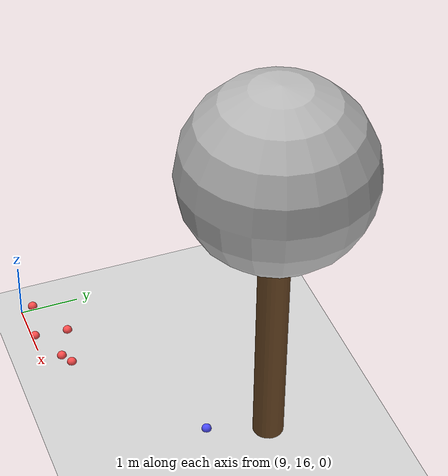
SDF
<sdf version="1.7">
 <world name="default">
  <model name="ground_plane">
   <static>1</static>
   <link name="link">
    <collision name="collision">
     <geometry><plane><normal>0 0 1</normal><size>100 100</size></plane></geometry>
     <surface>
      <contact><collide_bitmask>65535</collide_bitmask></contact>
      <friction><ode><mu>100</mu><mu2>50</mu2></ode></friction>
     </surface>
    </collision>
    <visual name="visual">
     <cast_shadows>0</cast_shadows>
     <geometry><plane><normal>0 0 1</normal><size>100 100</size></plane></geometry>
     <material>
      <script><uri>file://media/materials/scripts/gazebo.material</uri><name>Gazebo/Grey</name></script>
     </material>
    </visual>
   </link>
  </model>
  <model name="tree_simple_52">
   <static>1</static>
   <link name="link">
    <pose>0 0 0.1 0 -0 0</pose>
    <inertial>
     <mass>666</mass>
     <inertia>
      <ixx>0.0861167</ixx>
      <ixy>0</ixy>
      <ixz>0</ixz>
      <iyy>0.0861167</iyy>
      <iyz>0</iyz>
      <izz>0.0861167</izz>
     </inertia>
    </inertial>
    <collision name="collision_trunk">
     <pose>0 0 2 0 -0 0</pose>
     <geometry><cylinder><radius>0.25</radius><length>4</length></cylinder></geometry>
     <surface>
      <contact>
       <poissons_ratio>0.347</poissons_ratio>
       <elastic_modulus>8.8e+09</elastic_modulus>
       <ode><kp>100000</kp><kd>100</kd><max_vel>100</max_vel><min_depth>0.001</min_depth></ode>
      </contact>
      <friction>
       <torsional>
        <coefficient>1</coefficient>
        <use_patch_radius>0</use_patch_radius>
        <surface_radius>0.01</surface_radius>
       </torsional>
      </friction>
     </surface>
    </collision>
    <collision name="collision_treetop">
     <pose>0 0 5.2 0 -0 0</pose>
     <geometry><sphere><radius>1.5</radius></sphere></geometry>
     <surface>
      <contact>
       <poissons_ratio>0.347</poissons_ratio>
       <elastic_modulus>8.8e+09</elastic_modulus>
       <ode><kp>100000</kp><kd>100</kd><max_vel>100</max_vel><min_depth>0.001</min_depth></ode>
      </contact>
      <friction>
       <torsional>
        <coefficient>1</coefficient>
        <use_patch_radius>0</use_patch_radius>
        <surface_radius>0.01</surface_radius>
       </torsional>
      </friction>
     </surface>
    </collision>
    <visual name="trunk">
     <pose>0 0 2 0 -0 0</pose>
     <geometry><cylinder><radius>0.25</radius><length>4</length></cylinder></geometry>
     <material>
      <script>
       <uri>model://tree_simple/scripts</uri>
       <uri>model://tree_simple/materials/textures</uri>
       <name>TreeSimple/Trunk</name>
      </script>
     </material>
    </visual>
    <visual name="treetop">
     <pose>0 0 5.2 0 -0 0</pose>
     <geometry><sphere><radius>1.5</radius></sphere></geometry>
     <material>
      <script>
       <uri>model://tree_simple/scripts</uri>
       <uri>model://tree_simple/materials/textures</uri>
       <name>TreeSimple/Treetop</name>
      </script>
     </material>
    </visual>
   </link>
   <pose>13 19 -0.1 0 -0 0</pose>
  </model>
  <model name="seed_blue_107">
   <link name="link">
    <inertial>
     <mass>1</mass>
     <inertia><ixx>0.1</ixx><ixy>0</ixy><ixz>0</ixz><iyy>0.1</iyy><iyz>0</iyz><izz>0.1</izz></inertia>
    </inertial>
    <visual name="visual">
     <geometry><sphere><radius>0.08</radius></sphere></geometry>
     <material>
      <script><name>Gazebo/Grey</name><uri>file://media/materials/scripts/gazebo.material</uri></script>
      <shader type="pixel"><normal_map>__default__</normal_map></shader>
      <ambient>0.3 0.3 1 1</ambient>
      <diffuse>0.7 0.7 0.7 1</diffuse>
      <specular>0.01 0.01 0.01 1</specular>
      <emissive>0 0 0 1</emissive>
     </material>
    </visual>
    <collision name="collision">
     <geometry><sphere><radius>0.0005</radius></sphere></geometry>
     <surface>
      <friction>
       <ode><mu>1</mu><mu2>1</mu2><fdir1>0 0 0</fdir1><slip1>0</slip1><slip2>0</slip2></ode>
       <torsional>
        <coefficient>1</coefficient>
        <patch_radius>0</patch_radius>
        <surface_radius>0</surface_radius>
        <use_patch_radius>1</use_patch_radius>
        <ode><slip>0</slip></ode>
       </torsional>
      </friction>
      <bounce><restitution_coefficient>0</restitution_coefficient><threshold>1e+06</threshold></bounce>
      <contact>
       <collide_without_contact>0</collide_without_contact>
       <collide_without_contact_bitmask>1</collide_without_contact_bitmask>
       <collide_bitmask>1</collide_bitmask>
       <ode>
        <soft_cfm>0</soft_cfm>
        <soft_erp>0.2</soft_erp>
        <kp>1e+13</kp>
        <kd>1</kd>
        <max_vel>0.01</max_vel>
        <min_depth>0</min_depth>
       </ode>
       <bullet>
        <split_impulse>1</split_impulse>
        <split_impulse_penetration_threshold>-0.01</split_impulse_penetration_threshold>
        <soft_cfm>0</soft_cfm>
        <soft_erp>0.2</soft_erp>
        <kp>1e+13</kp>
        <kd>1</kd>
       </bullet>
      </contact>
     </surface>
    </collision>
   </link>
   <static>0</static>
   <pose>12.6865 18.0586 0.0005 0 -0 0</pose>
  </model>
  <model name="seed_red_238">
   <link name="link">
    <inertial>
     <mass>1</mass>
     <inertia><ixx>0.1</ixx><ixy>0</ixy><ixz>0</ixz><iyy>0.1</iyy><iyz>0</iyz><izz>0.1</izz></inertia>
    </inertial>
    <visual name="visual">
     <geometry><sphere><radius>0.08</radius></sphere></geometry>
     <material>
      <script><name>Gazebo/Grey</name><uri>file://media/materials/scripts/gazebo.material</uri></script>
      <shader type="pixel"><normal_map>__default__</normal_map></shader>
      <ambient>1 0.3 0.3 1</ambient>
      <diffuse>0.7 0.7 0.7 1</diffuse>
      <specular>0.01 0.01 0.01 1</specular>
      <emissive>0 0 0 1</emissive>
     </material>
    </visual>
    <collision name="collision">
     <geometry><sphere><radius>0.0005</radius></sphere></geometry>
     <surface>
      <friction>
       <ode><mu>1</mu><mu2>1</mu2><fdir1>0 0 0</fdir1><slip1>0</slip1><slip2>0</slip2></ode>
       <torsional>
        <coefficient>1</coefficient>
        <patch_radius>0</patch_radius>
        <surface_radius>0</surface_radius>
        <use_patch_radius>1</use_patch_radius>
        <ode><slip>0</slip></ode>
       </torsional>
      </friction>
      <bounce><restitution_coefficient>0</restitution_coefficient><threshold>1e+06</threshold></bounce>
      <contact>
       <collide_without_contact>0</collide_without_contact>
       <collide_without_contact_bitmask>1</collide_without_contact_bitmask>
       <collide_bitmask>1</collide_bitmask>
       <ode>
        <soft_cfm>0</soft_cfm>
        <soft_erp>0.2</soft_erp>
        <kp>1e+13</kp>
        <kd>1</kd>
        <max_vel>0.01</max_vel>
        <min_depth>0</min_depth>
       </ode>
       <bullet>
        <split_impulse>1</split_impulse>
        <split_impulse_penetration_threshold>-0.01</split_impulse_penetration_threshold>
        <soft_cfm>0</soft_cfm>
        <soft_erp>0.2</soft_erp>
        <kp>1e+13</kp>
        <kd>1</kd>
       </bullet>
      </contact>
     </surface>
    </collision>
   </link>
   <static>0</static>
   <pose>8.90558 16.2216 0.0005 0 -0 0</pose>
  </model>
  <model name="seed_red_239">
   <link name="link">
    <inertial>
     <mass>1</mass>
     <inertia><ixx>0.1</ixx><ixy>0</ixy><ixz>0</ixz><iyy>0.1</iyy><iyz>0</iyz><izz>0.1</izz></inertia>
    </inertial>
    <visual name="visual">
     <geometry><sphere><radius>0.08</radius></sphere></geometry>
     <material>
      <script><name>Gazebo/Grey</name><uri>file://media/materials/scripts/gazebo.material</uri></script>
      <shader type="pixel"><normal_map>__default__</normal_map></shader>
      <ambient>1 0.3 0.3 1</ambient>
      <diffuse>0.7 0.7 0.7 1</diffuse>
      <specular>0.01 0.01 0.01 1</specular>
      <emissive>0 0 0 1</emissive>
     </material>
    </visual>
    <collision name="collision">
     <geometry><sphere><radius>0.0005</radius></sphere></geometry>
     <surface>
      <friction>
       <ode><mu>1</mu><mu2>1</mu2><fdir1>0 0 0</fdir1><slip1>0</slip1><slip2>0</slip2></ode>
       <torsional>
        <coefficient>1</coefficient>
        <patch_radius>0</patch_radius>
        <surface_radius>0</surface_radius>
        <use_patch_radius>1</use_patch_radius>
        <ode><slip>0</slip></ode>
       </torsional>
      </friction>
      <bounce><restitution_coefficient>0</restitution_coefficient><threshold>1e+06</threshold></bounce>
      <contact>
       <collide_without_contact>0</collide_without_contact>
       <collide_without_contact_bitmask>1</collide_without_contact_bitmask>
       <collide_bitmask>1</collide_bitmask>
       <ode>
        <soft_cfm>0</soft_cfm>
        <soft_erp>0.2</soft_erp>
        <kp>1e+13</kp>
        <kd>1</kd>
        <max_vel>0.01</max_vel>
        <min_depth>0</min_depth>
       </ode>
       <bullet>
        <split_impulse>1</split_impulse>
        <split_impulse_penetration_threshold>-0.01</split_impulse_penetration_threshold>
        <soft_cfm>0</soft_cfm>
        <soft_erp>0.2</soft_erp>
        <kp>1e+13</kp>
        <kd>1</kd>
       </bullet>
      </contact>
     </surface>
    </collision>
   </link>
   <static>0</static>
   <pose>9.64027 16.0556 0.0005 0 -0 0</pose>
  </model>
  <model name="seed_red_240">
   <link name="link">
    <inertial>
     <mass>1</mass>
     <inertia><ixx>0.1</ixx><ixy>0</ixy><ixz>0</ixz><iyy>0.1</iyy><iyz>0</iyz><izz>0.1</izz></inertia>
    </inertial>
    <visual name="visual">
     <geometry><sphere><radius>0.08</radius></sphere></geometry>
     <material>
      <script><name>Gazebo/Grey</name><uri>file://media/materials/scripts/gazebo.material</uri></script>
      <shader type="pixel"><normal_map>__default__</normal_map></shader>
      <ambient>1 0.3 0.3 1</ambient>
      <diffuse>0.7 0.7 0.7 1</diffuse>
      <specular>0.01 0.01 0.01 1</specular>
      <emissive>0 0 0 1</emissive>
     </material>
    </visual>
    <collision name="collision">
     <geometry><sphere><radius>0.0005</radius></sphere></geometry>
     <surface>
      <friction>
       <ode><mu>1</mu><mu2>1</mu2><fdir1>0 0 0</fdir1><slip1>0</slip1><slip2>0</slip2></ode>
       <torsional>
        <coefficient>1</coefficient>
        <patch_radius>0</patch_radius>
        <surface_radius>0</surface_radius>
        <use_patch_radius>1</use_patch_radius>
        <ode><slip>0</slip></ode>
       </torsional>
      </friction>
      <bounce><restitution_coefficient>0</restitution_coefficient><threshold>1e+06</threshold></bounce>
      <contact>
       <collide_without_contact>0</collide_without_contact>
       <collide_without_contact_bitmask>1</collide_without_contact_bitmask>
       <collide_bitmask>1</collide_bitmask>
       <ode>
        <soft_cfm>0</soft_cfm>
        <soft_erp>0.2</soft_erp>
        <kp>1e+13</kp>
        <kd>1</kd>
        <max_vel>0.01</max_vel>
        <min_depth>0</min_depth>
       </ode>
       <bullet>
        <split_impulse>1</split_impulse>
        <split_impulse_penetration_threshold>-0.01</split_impulse_penetration_threshold>
        <soft_cfm>0</soft_cfm>
        <soft_erp>0.2</soft_erp>
        <kp>1e+13</kp>
        <kd>1</kd>
       </bullet>
      </contact>
     </surface>
    </collision>
   </link>
   <static>0</static>
   <pose>10.4652 16.464 0.0005 0 -0 0</pose>
  </model>
  <model name="seed_red_241">
   <link name="link">
    <inertial>
     <mass>1</mass>
     <inertia><ixx>0.1</ixx><ixy>0</ixy><ixz>0</ixz><iyy>0.1</iyy><iyz>0</iyz><izz>0.1</izz></inertia>
    </inertial>
    <visual name="visual">
     <geometry><sphere><radius>0.08</radius></sphere></geometry>
     <material>
      <script><name>Gazebo/Grey</name><uri>file://media/materials/scripts/gazebo.material</uri></script>
      <shader type="pixel"><normal_map>__default__</normal_map></shader>
      <ambient>1 0.3 0.3 1</ambient>
      <diffuse>0.7 0.7 0.7 1</diffuse>
      <specular>0.01 0.01 0.01 1</specular>
      <emissive>0 0 0 1</emissive>
     </material>
    </visual>
    <collision name="collision">
     <geometry><sphere><radius>0.0005</radius></sphere></geometry>
     <surface>
      <friction>
       <ode><mu>1</mu><mu2>1</mu2><fdir1>0 0 0</fdir1><slip1>0</slip1><slip2>0</slip2></ode>
       <torsional>
        <coefficient>1</coefficient>
        <patch_radius>0</patch_radius>
        <surface_radius>0</surface_radius>
        <use_patch_radius>1</use_patch_radius>
        <ode><slip>0</slip></ode>
       </torsional>
      </friction>
      <bounce><restitution_coefficient>0</restitution_coefficient><threshold>1e+06</threshold></bounce>
      <contact>
       <collide_without_contact>0</collide_without_contact>
       <collide_without_contact_bitmask>1</collide_without_contact_bitmask>
       <collide_bitmask>1</collide_bitmask>
       <ode>
        <soft_cfm>0</soft_cfm>
        <soft_erp>0.2</soft_erp>
        <kp>1e+13</kp>
        <kd>1</kd>
        <max_vel>0.01</max_vel>
        <min_depth>0</min_depth>
       </ode>
       <bullet>
        <split_impulse>1</split_impulse>
        <split_impulse_penetration_threshold>-0.01</split_impulse_penetration_threshold>
        <soft_cfm>0</soft_cfm>
        <soft_erp>0.2</soft_erp>
        <kp>1e+13</kp>
        <kd>1</kd>
       </bullet>
      </contact>
     </surface>
    </collision>
   </link>
   <static>0</static>
   <pose>9.69089 16.6196 0.0005 0 -0 0</pose>
  </model>
  <model name="seed_red_242">
   <link name="link">
    <inertial>
     <mass>1</mass>
     <inertia><ixx>0.1</ixx><ixy>0</ixy><ixz>0</ixz><iyy>0.1</iyy><iyz>0</iyz><izz>0.1</izz></inertia>
    </inertial>
    <visual name="visual">
     <geometry><sphere><radius>0.08</radius></sphere></geometry>
     <material>
      <script><name>Gazebo/Grey</name><uri>file://media/materials/scripts/gazebo.material</uri></script>
      <shader type="pixel"><normal_map>__default__</normal_map></shader>
      <ambient>1 0.3 0.3 1</ambient>
      <diffuse>0.7 0.7 0.7 1</diffuse>
      <specular>0.01 0.01 0.01 1</specular>
      <emissive>0 0 0 1</emissive>
     </material>
    </visual>
    <collision name="collision">
     <geometry><sphere><radius>0.0005</radius></sphere></geometry>
     <surface>
      <friction>
       <ode><mu>1</mu><mu2>1</mu2><fdir1>0 0 0</fdir1><slip1>0</slip1><slip2>0</slip2></ode>
       <torsional>
        <coefficient>1</coefficient>
        <patch_radius>0</patch_radius>
        <surface_radius>0</surface_radius>
        <use_patch_radius>1</use_patch_radius>
        <ode><slip>0</slip></ode>
       </torsional>
      </friction>
      <bounce><restitution_coefficient>0</restitution_coefficient><threshold>1e+06</threshold></bounce>
      <contact>
       <collide_without_contact>0</collide_without_contact>
       <collide_without_contact_bitmask>1</collide_without_contact_bitmask>
       <collide_bitmask>1</collide_bitmask>
       <ode>
        <soft_cfm>0</soft_cfm>
        <soft_erp>0.2</soft_erp>
        <kp>1e+13</kp>
        <kd>1</kd>
        <max_vel>0.01</max_vel>
        <min_depth>0</min_depth>
       </ode>
       <bullet>
        <split_impulse>1</split_impulse>
        <split_impulse_penetration_threshold>-0.01</split_impulse_penetration_threshold>
        <soft_cfm>0</soft_cfm>
        <soft_erp>0.2</soft_erp>
        <kp>1e+13</kp>
        <kd>1</kd>
       </bullet>
      </contact>
     </surface>
    </collision>
   </link>
   <static>0</static>
   <pose>10.2627 16.3486 0.0005 0 -0 0</pose>
  </model>
 </world>
</sdf>
